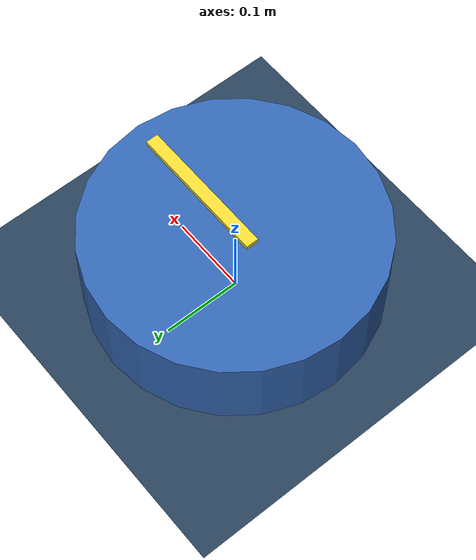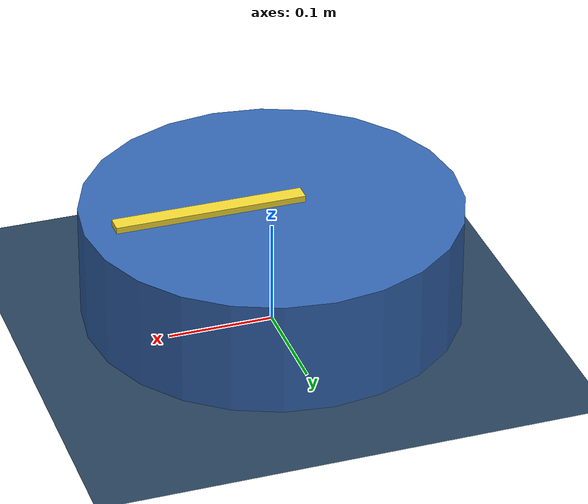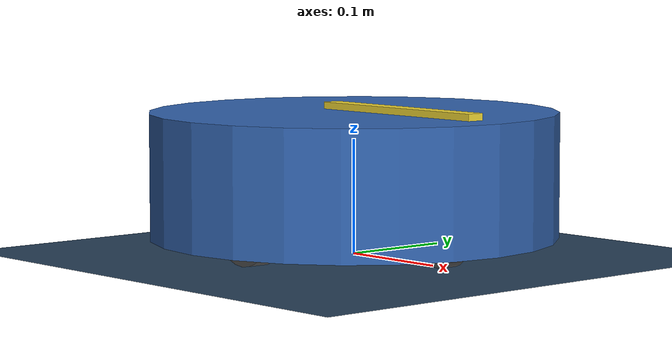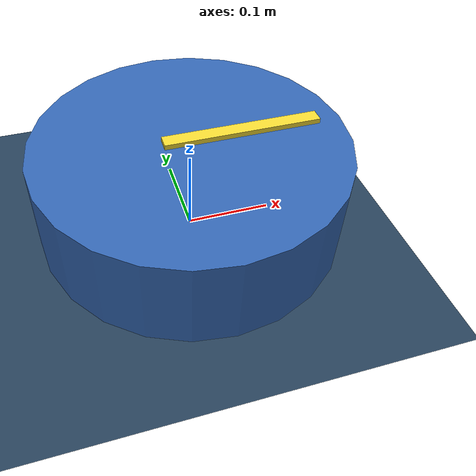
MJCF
<mujoco model="turtlebot2_kobuki_scene">
  <include file="turtlebot2_kobuki.xml"/>

  <statistic center="0 0 0.1" extent="0.5"/>

  <visual>
    <headlight diffuse="0.6 0.6 0.6" ambient="0.3 0.3 0.3" specular="0 0 0"/>
    <rgba haze="0.15 0.25 0.35 1"/>
  </visual>

  <asset>
    <texture type="2d" name="groundplane" builtin="checker" mark="edge" rgb1="0.2 0.3 0.4" rgb2="0.1 0.2 0.3"
      markrgb="0.8 0.8 0.8" width="300" height="300"/>
    <material name="groundplane" texture="groundplane" texuniform="true" texrepeat="5 5" reflectance="0.2"/>
  </asset>

  <worldbody>
    <light pos="0 0 1.5" dir="0 0 -1" diffuse="0.5 0.5 0.5" specular="0.3 0.3 0.3" castshadow="true"/>
    <geom name="floor" size="0 0 0.05" type="plane" material="groundplane"/>
    <geom name="goal" type="sphere" pos="0 0 0.05" size="0.06" rgba="0.9 0.2 0.2 0.8" contype="0" conaffinity="0"/>
    <camera name="topdown" pos="0 0 3" xyaxes="1 0 0 0 1 0" mode="trackcom"
            fovy="60"/>
  </worldbody>
</mujoco>

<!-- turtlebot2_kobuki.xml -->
<mujoco model="turtlebot2_kobuki">
  <compiler angle="radian"/>

  <asset>
    <material name="grey" rgba="0.3 0.3 0.3 1"/>
    <material name="body_blue" rgba="0.2 0.4 0.7 1"/>
    <material name="arrow_yellow" rgba="0.95 0.85 0.2 1"/>
  </asset>

  <default>
    <!-- Kobuki wheel motor -->
    <default class="wheel">
      <joint limited="false" frictionloss="0.1" armature="0.01"/>
      <!-- max wheel angular vel: 0.7 m/s / 0.035 m = 20 rad/s -->
      <velocity kv="0.1" ctrlrange="-20 20" ctrllimited="true"/>
      <default class="wheel_left">
        <joint axis="0 0 1"/>
      </default>
      <default class="wheel_right">
        <joint axis="0 0 1"/>
      </default>
    </default>
  </default>

  <worldbody>
    <body name="base_link" pos="0 0 0.0102">
      <!-- URDF: mass=2.4, COM=(0.01, 0, 0), ixx=iyy=0.019995, izz=0.03675 -->
      <inertial pos="0.01 0 0" mass="2.4" diaginertia="0.019995 0.019995 0.03675"/>
      <joint type="free" name="base_joint"/>

      <!-- Visual body cylinder (matches collision shape, visual only) -->
      <geom name="body_cylinder" type="cylinder" size="0.178 0.05469"
        pos="0 0 0.05949" material="body_blue"
        contype="0" conaffinity="0" density="0" group="2"/>
      <!-- Collision cylinder: URDF r=0.178, length=0.10938 (half=0.05469), origin z=0.05949 -->
      <geom name="body_collision" type="cylinder" size="0.178 0.05469"
        pos="0 0 0.05949" group="3"/>

      <!-- Heading line on top of the cylinder for visual reference -->
      <geom name="heading_line" type="box" size="0.09 0.008 0.003"
        pos="0.06 0 0.118" material="arrow_yellow"
        contype="0" conaffinity="0" density="0" group="2"/>

      <!-- Front caster: URDF origin=(0.115, 0, 0.007), cylinder r=0.017 half-l=0.0088, rotated -pi/2 about X -->
      <geom name="caster_front" type="cylinder" size="0.017 0.0088"
        pos="0.115 0 0.007" quat="0.707107 -0.707107 0 0"
        material="grey" friction="0.0001 0.0001 0.0001"
        solref="0.02 1" solimp="0.95 0.99 0.001" condim="1"/>
      <!-- Back caster: URDF origin=(-0.135, 0, 0.009), same geometry -->
      <geom name="caster_back" type="cylinder" size="0.017 0.0088"
        pos="-0.135 0 0.009" quat="0.707107 -0.707107 0 0"
        material="grey" friction="0.0001 0.0001 0.0001"
        solref="0.02 1" solimp="0.95 0.99 0.001" condim="1"/>

      <!-- Left wheel: URDF origin=(0, 0.115, 0.025), rpy=(-pi/2, 0, 0), cylinder r=0.035 half-w=0.0103 -->
      <body name="wheel_left_link" pos="0 0.115 0.025" quat="0.707107 -0.707107 0 0">
        <inertial pos="0 0 0" mass="0.01" diaginertia="0.001 0.001 0.001"/>
        <joint name="wheel_left_joint" class="wheel_left"/>
        <geom type="cylinder" size="0.035 0.0103" material="grey"
          contype="0" conaffinity="0" density="0" group="2"/>
        <geom type="cylinder" size="0.035 0.0103" group="3" contype="1" conaffinity="1"/>
      </body>
      <!-- Right wheel: URDF origin=(0, -0.115, 0.025), same rotation -->
      <body name="wheel_right_link" pos="0 -0.115 0.025" quat="0.707107 -0.707107 0 0">
        <inertial pos="0 0 0" mass="0.01" diaginertia="0.001 0.001 0.001"/>
        <joint name="wheel_right_joint" class="wheel_right"/>
        <geom type="cylinder" size="0.035 0.0103" material="grey"
          contype="0" conaffinity="0" density="0" group="2"/>
        <geom type="cylinder" size="0.035 0.0103" group="3" contype="1" conaffinity="1"/>
      </body>
    </body>
  </worldbody>

  <actuator>
    <velocity class="wheel_left" name="left_wheel_velocity" joint="wheel_left_joint"/>
    <velocity class="wheel_right" name="right_wheel_velocity" joint="wheel_right_joint"/>
  </actuator>

  <contact>
    <exclude body1="base_link" body2="wheel_left_link"/>
    <exclude body1="base_link" body2="wheel_right_link"/>
  </contact>
</mujoco>
